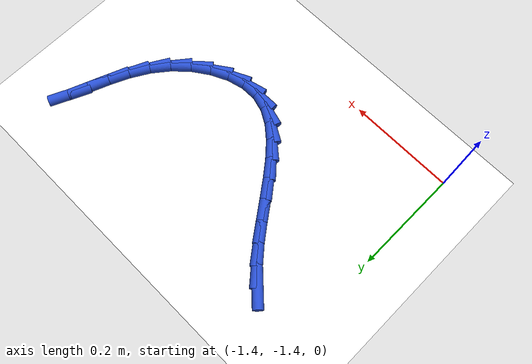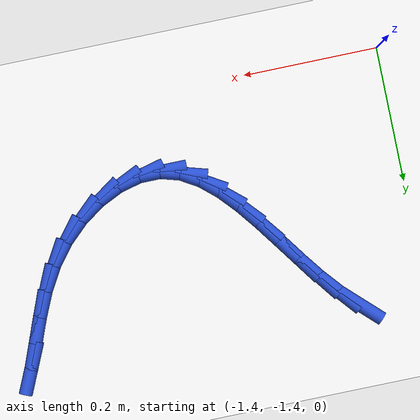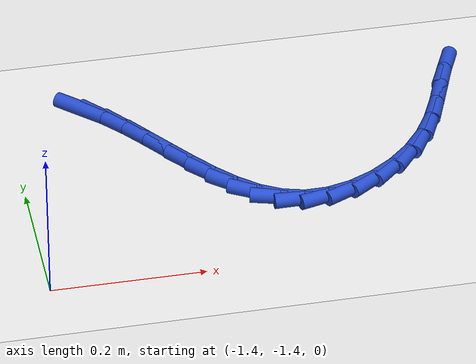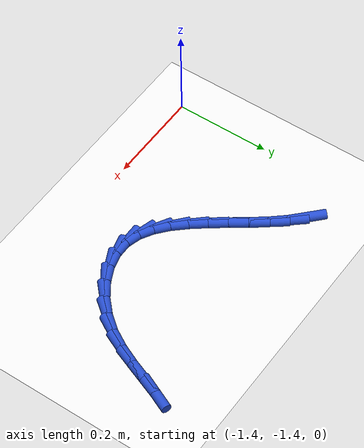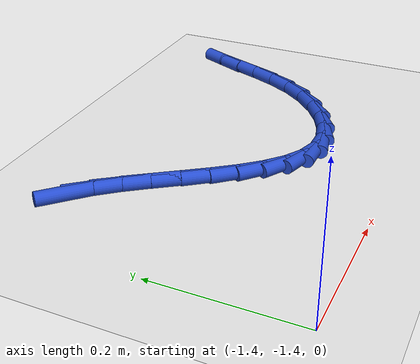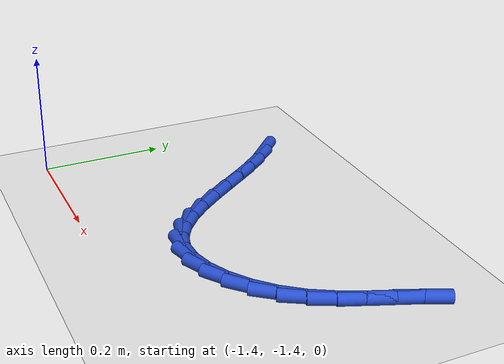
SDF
<sdf version="1.6">
 <world name="default">
  <model name="ground_plane">
   <static>1</static>
   <link name="link">
    <collision name="collision">
     <geometry><plane><normal>0 0 1</normal><size>100 100</size></plane></geometry>
     <surface><friction><ode><mu>100</mu><mu2>50</mu2></ode></friction></surface>
    </collision>
    <visual name="visual">
     <cast_shadows>0</cast_shadows>
     <geometry><plane><normal>0 0 1</normal><size>100 100</size></plane></geometry>
     <material>
      <script><uri>file://media/materials/scripts/gazebo.material</uri><name>Gazebo/WhiteGlow</name></script>
     </material>
    </visual>
   </link>
  </model>
  <model name="line">
   <link name="link_179">
    <pose>-1.2978502173113333 -1.0353587915222704 0.01 0 1.57 -0.7648140023307184</pose>
    <collision name="collision">
     <geometry><cylinder><radius>0.01</radius><length>0.08</length></cylinder></geometry>
    </collision>
    <visual name="visual">
     <material>
      <script><name>Gazebo/Blue</name><uri>file://media/materials/scripts/gazebo.material</uri></script>
     </material>
     <geometry><cylinder><radius>0.01</radius><length>0.08</length></cylinder></geometry>
    </visual>
   </link>
   <link name="link_180">
    <pose>-1.2724094372523256 -1.0597731993981254 0.01 0 1.57 -0.8655141107315701</pose>
    <collision name="collision">
     <geometry><cylinder><radius>0.01</radius><length>0.08</length></cylinder></geometry>
    </collision>
    <visual name="visual">
     <material>
      <script><name>Gazebo/Blue</name><uri>file://media/materials/scripts/gazebo.material</uri></script>
     </material>
     <geometry><cylinder><radius>0.01</radius><length>0.08</length></cylinder></geometry>
    </visual>
   </link>
   <link name="link_181">
    <pose>-1.2482555685278411 -1.0881441719916654 0.01 0 1.57 -0.9247722908764366</pose>
    <collision name="collision">
     <geometry><cylinder><radius>0.01</radius><length>0.08</length></cylinder></geometry>
    </collision>
    <visual name="visual">
     <material>
      <script><name>Gazebo/Blue</name><uri>file://media/materials/scripts/gazebo.material</uri></script>
     </material>
     <geometry><cylinder><radius>0.01</radius><length>0.08</length></cylinder></geometry>
    </visual>
   </link>
   <link name="link_182">
    <pose>-1.2249638575626303 -1.1190371021620522 0.01 0 1.57 -0.9503139610904735</pose>
    <collision name="collision">
     <geometry><cylinder><radius>0.01</radius><length>0.08</length></cylinder></geometry>
    </collision>
    <visual name="visual">
     <material>
      <script><name>Gazebo/Blue</name><uri>file://media/materials/scripts/gazebo.material</uri></script>
     </material>
     <geometry><cylinder><radius>0.01</radius><length>0.08</length></cylinder></geometry>
    </visual>
   </link>
   <link name="link_183">
    <pose>-1.202109550781442 -1.1510173827684482 0.01 0 1.57 -0.9454030518988048</pose>
    <collision name="collision">
     <geometry><cylinder><radius>0.01</radius><length>0.08</length></cylinder></geometry>
    </collision>
    <visual name="visual">
     <material>
      <script><name>Gazebo/Blue</name><uri>file://media/materials/scripts/gazebo.material</uri></script>
     </material>
     <geometry><cylinder><radius>0.01</radius><length>0.08</length></cylinder></geometry>
    </visual>
   </link>
   <link name="link_184">
    <pose>-1.1792678946090267 -1.1826504066700163 0.01 0 1.57 -0.9089982111449953</pose>
    <collision name="collision">
     <geometry><cylinder><radius>0.01</radius><length>0.08</length></cylinder></geometry>
    </collision>
    <visual name="visual">
     <material>
      <script><name>Gazebo/Blue</name><uri>file://media/materials/scripts/gazebo.material</uri></script>
     </material>
     <geometry><cylinder><radius>0.01</radius><length>0.08</length></cylinder></geometry>
    </visual>
   </link>
   <link name="link_185">
    <pose>-1.1560141354701325 -1.2125015667259182 0.01 0 1.57 -0.83551010417461</pose>
    <collision name="collision">
     <geometry><cylinder><radius>0.01</radius><length>0.08</length></cylinder></geometry>
    </collision>
    <visual name="visual">
     <material>
      <script><name>Gazebo/Blue</name><uri>file://media/materials/scripts/gazebo.material</uri></script>
     </material>
     <geometry><cylinder><radius>0.01</radius><length>0.08</length></cylinder></geometry>
    </visual>
   </link>
   <link name="link_186">
    <pose>-1.1319235197895108 -1.2391362557953156 0.01 0 1.57 -0.7143537770744539</pose>
    <collision name="collision">
     <geometry><cylinder><radius>0.01</radius><length>0.08</length></cylinder></geometry>
    </collision>
    <visual name="visual">
     <material>
      <script><name>Gazebo/Blue</name><uri>file://media/materials/scripts/gazebo.material</uri></script>
     </material>
     <geometry><cylinder><radius>0.01</radius><length>0.08</length></cylinder></geometry>
    </visual>
   </link>
   <link name="link_187">
    <pose>-1.1065712939919108 -1.261119866737371 0.01 0 1.57 -0.5315282193252256</pose>
    <collision name="collision">
     <geometry><cylinder><radius>0.01</radius><length>0.08</length></cylinder></geometry>
    </collision>
    <visual name="visual">
     <material>
      <script><name>Gazebo/Blue</name><uri>file://media/materials/scripts/gazebo.material</uri></script>
     </material>
     <geometry><cylinder><radius>0.01</radius><length>0.08</length></cylinder></geometry>
    </visual>
   </link>
   <link name="link_188">
    <pose>-1.0795327045020817 -1.2770177924112471 0.01 0 1.57 -0.27985769366892294</pose>
    <collision name="collision">
     <geometry><cylinder><radius>0.01</radius><length>0.08</length></cylinder></geometry>
    </collision>
    <visual name="visual">
     <material>
      <script><name>Gazebo/Blue</name><uri>file://media/materials/scripts/gazebo.material</uri></script>
     </material>
     <geometry><cylinder><radius>0.01</radius><length>0.08</length></cylinder></geometry>
    </visual>
   </link>
   <link name="link_189">
    <pose>-1.0503829977447734 -1.285395425676106 0.01 0 1.57 0.0060761792601033</pose>
    <collision name="collision">
     <geometry><cylinder><radius>0.01</radius><length>0.08</length></cylinder></geometry>
    </collision>
    <visual name="visual">
     <material>
      <script><name>Gazebo/Blue</name><uri>file://media/materials/scripts/gazebo.material</uri></script>
     </material>
     <geometry><cylinder><radius>0.01</radius><length>0.08</length></cylinder></geometry>
    </visual>
   </link>
   <link name="link_190">
    <pose>-1.0189819258250068 -1.2852046247860363 0.01 0 1.57 0.24692773447035377</pose>
    <collision name="collision">
     <geometry><cylinder><radius>0.01</radius><length>0.08</length></cylinder></geometry>
    </collision>
    <visual name="visual">
     <material>
      <script><name>Gazebo/Blue</name><uri>file://media/materials/scripts/gazebo.material</uri></script>
     </material>
     <geometry><cylinder><radius>0.01</radius><length>0.08</length></cylinder></geometry>
    </visual>
   </link>
   <link name="link_191">
    <pose>-0.9863545548573781 -1.2769801813780197 0.01 0 1.57 0.4400866809652676</pose>
    <collision name="collision">
     <geometry><cylinder><radius>0.01</radius><length>0.08</length></cylinder></geometry>
    </collision>
    <visual name="visual">
     <material>
      <script><name>Gazebo/Blue</name><uri>file://media/materials/scripts/gazebo.material</uri></script>
     </material>
     <geometry><cylinder><radius>0.01</radius><length>0.08</length></cylinder></geometry>
    </visual>
   </link>
   <link name="link_192">
    <pose>-0.9538242651071759 -1.2616621095645606 0.01 0 1.57 0.604111545881806</pose>
    <collision name="collision">
     <geometry><cylinder><radius>0.01</radius><length>0.08</length></cylinder></geometry>
    </collision>
    <visual name="visual">
     <material>
      <script><name>Gazebo/Blue</name><uri>file://media/materials/scripts/gazebo.material</uri></script>
     </material>
     <geometry><cylinder><radius>0.01</radius><length>0.08</length></cylinder></geometry>
    </visual>
   </link>
   <link name="link_193">
    <pose>-0.9227144369832958 -1.2401904236532328 0.01 0 1.57 0.7548779147165285</pose>
    <collision name="collision">
     <geometry><cylinder><radius>0.01</radius><length>0.08</length></cylinder></geometry>
    </collision>
    <visual name="visual">
     <material>
      <script><name>Gazebo/Blue</name><uri>file://media/materials/scripts/gazebo.material</uri></script>
     </material>
     <geometry><cylinder><radius>0.01</radius><length>0.08</length></cylinder></geometry>
    </visual>
   </link>
   <link name="link_194">
    <pose>-0.8943484508946298 -1.213505137951608 0.01 0 1.57 0.9053030763294819</pose>
    <collision name="collision">
     <geometry><cylinder><radius>0.01</radius><length>0.08</length></cylinder></geometry>
    </collision>
    <visual name="visual">
     <material>
      <script><name>Gazebo/Blue</name><uri>file://media/materials/scripts/gazebo.material</uri></script>
     </material>
     <geometry><cylinder><radius>0.01</radius><length>0.08</length></cylinder></geometry>
    </visual>
   </link>
   <link name="link_195">
    <pose>-0.8700477547847304 -1.1825466577560884 0.01 0 1.57 1.0490613127466664</pose>
    <collision name="collision">
     <geometry><cylinder><radius>0.01</radius><length>0.08</length></cylinder></geometry>
    </collision>
    <visual name="visual">
     <material>
      <script><name>Gazebo/Blue</name><uri>file://media/materials/scripts/gazebo.material</uri></script>
     </material>
     <geometry><cylinder><radius>0.01</radius><length>0.08</length></cylinder></geometry>
    </visual>
   </link>
   <link name="link_196">
    <pose>-0.8504180528599007 -1.1484002022440551 0.01 0 1.57 1.148273738065654</pose>
    <collision name="collision">
     <geometry><cylinder><radius>0.01</radius><length>0.08</length></cylinder></geometry>
    </collision>
    <visual name="visual">
     <material>
      <script><name>Gazebo/Blue</name><uri>file://media/materials/scripts/gazebo.material</uri></script>
     </material>
     <geometry><cylinder><radius>0.01</radius><length>0.08</length></cylinder></geometry>
    </visual>
   </link>
   <link name="link_197">
    <pose>-0.8342825002416482 -1.1125116474000318 0.01 0 1.57 1.1989264278335352</pose>
    <collision name="collision">
     <geometry><cylinder><radius>0.01</radius><length>0.08</length></cylinder></geometry>
    </collision>
    <visual name="visual">
     <material>
      <script><name>Gazebo/Blue</name><uri>file://media/materials/scripts/gazebo.material</uri></script>
     </material>
     <geometry><cylinder><radius>0.01</radius><length>0.08</length></cylinder></geometry>
    </visual>
   </link>
   <link name="link_198">
    <pose>-0.8201913919333799 -1.076382076024349 0.01 0 1.57 1.201500179803577</pose>
    <collision name="collision">
     <geometry><cylinder><radius>0.01</radius><length>0.08</length></cylinder></geometry>
    </collision>
    <visual name="visual">
     <material>
      <script><name>Gazebo/Blue</name><uri>file://media/materials/scripts/gazebo.material</uri></script>
     </material>
     <geometry><cylinder><radius>0.01</radius><length>0.08</length></cylinder></geometry>
    </visual>
   </link>
   <link name="link_199">
    <pose>-0.8066950229385013 -1.0415125709173365 0.01 0 1.57 1.1504685682246998</pose>
    <collision name="collision">
     <geometry><cylinder><radius>0.01</radius><length>0.08</length></cylinder></geometry>
    </collision>
    <visual name="visual">
     <material>
      <script><name>Gazebo/Blue</name><uri>file://media/materials/scripts/gazebo.material</uri></script>
     </material>
     <geometry><cylinder><radius>0.01</radius><length>0.08</length></cylinder></geometry>
    </visual>
   </link>
  </model>
 </world>
</sdf>
